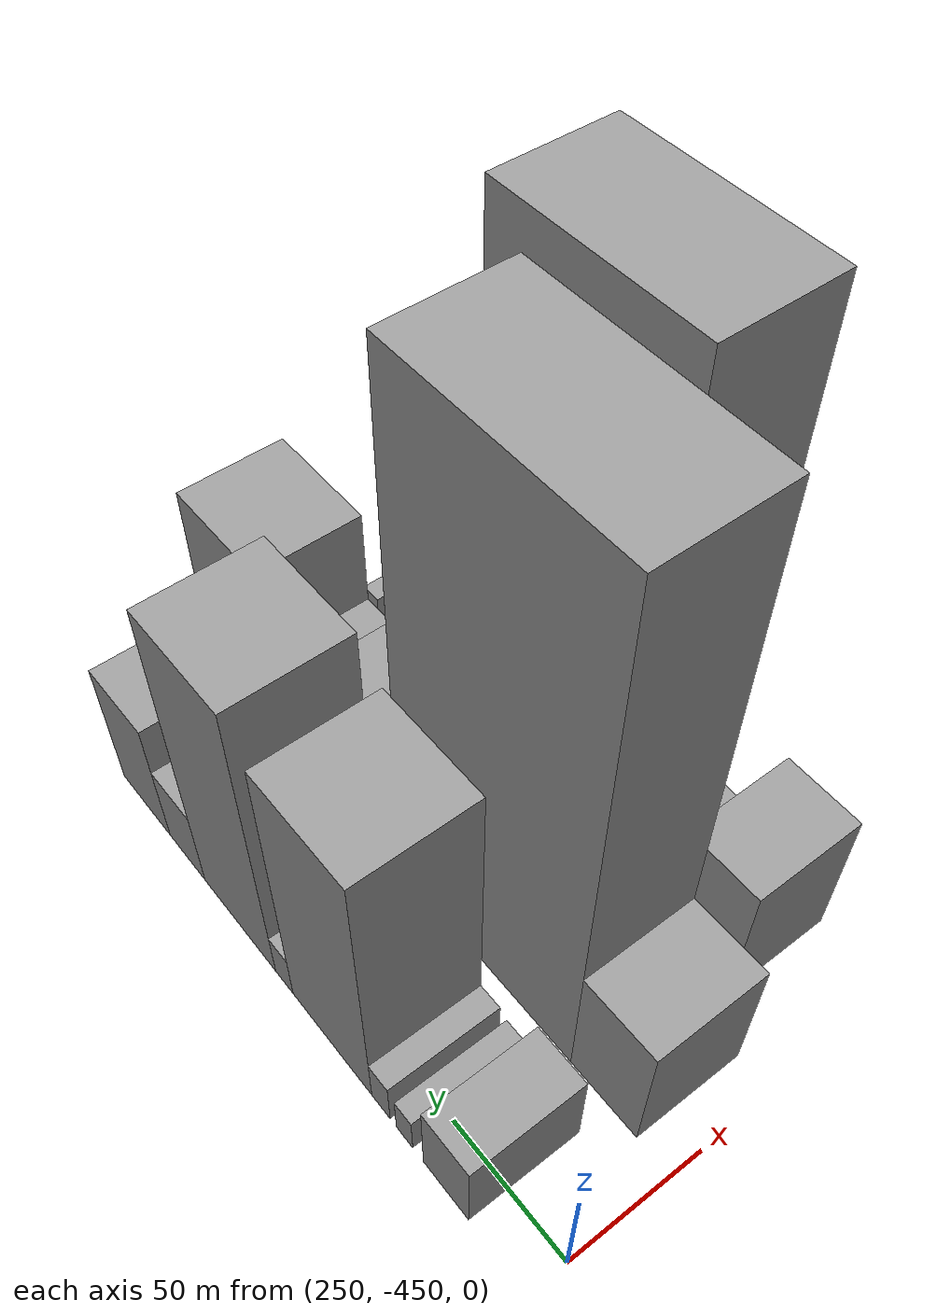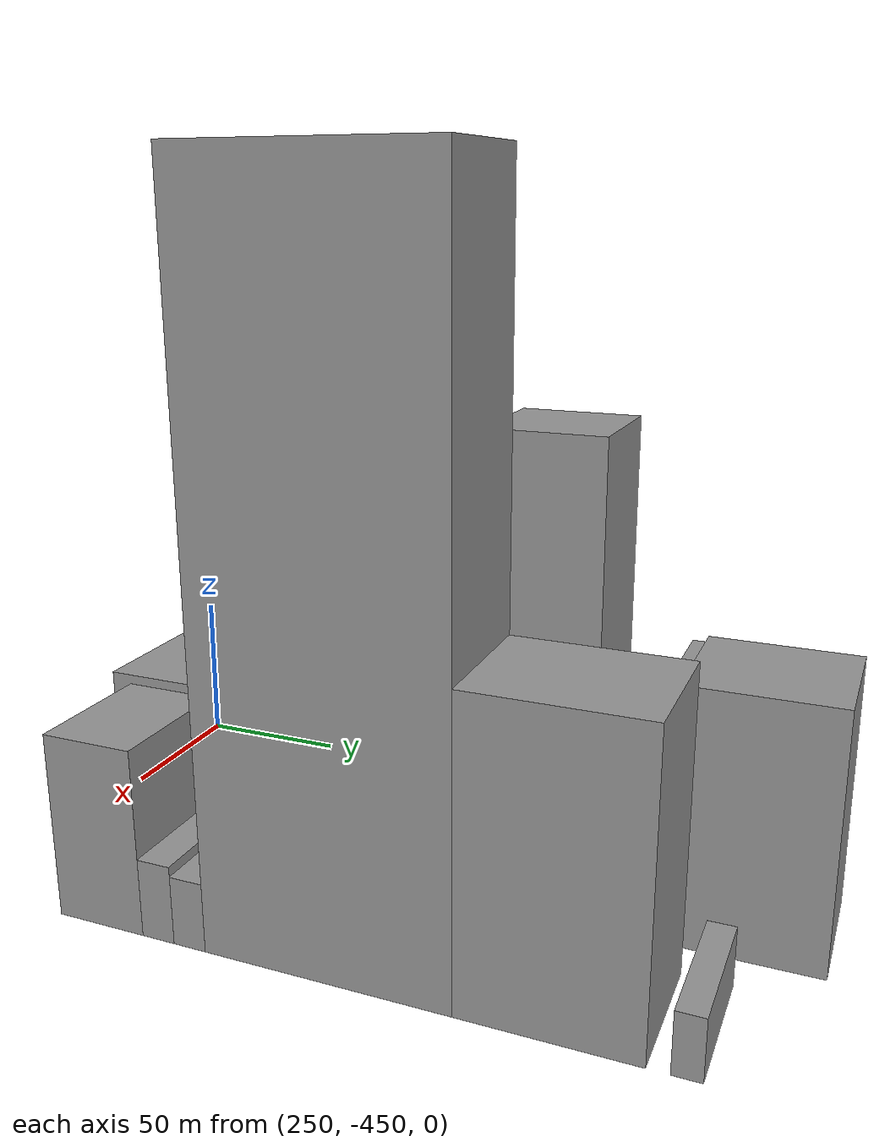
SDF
<sdf version="1.6">
 <world name="default">
  <model name="building_160">
   <static>1</static>
   <pose>256.0000 -414.4426 0 0.000000 0.000000 0.000000</pose>
   <link name="link">
    <pose>0 0 18.00 0 0 0</pose>
    <collision name="collision"><geometry><box><size>40.0000 20.6248 36.0000</size></box></geometry></collision>
    <visual name="visual">
     <cast_shadows>0</cast_shadows>
     <geometry><box><size>40.0000 20.6248 36.0000</size></box></geometry>
     <material>
      <script>
       <uri>model://grey_wall/materials/scripts</uri>
       <uri>model://grey_wall/materials/textures</uri>
       <name>vrc/grey_wall</name>
      </script>
     </material>
    </visual>
   </link>
  </model>
  <model name="building_161">
   <static>1</static>
   <pose>256.0000 -395.2397 0 0.000000 0.000000 0.000000</pose>
   <link name="link">
    <pose>0 0 9.00 0 0 0</pose>
    <collision name="collision"><geometry><box><size>40.0000 7.7809 18.0000</size></box></geometry></collision>
    <visual name="visual">
     <cast_shadows>0</cast_shadows>
     <geometry><box><size>40.0000 7.7809 18.0000</size></box></geometry>
     <material>
      <script>
       <uri>model://grey_wall/materials/scripts</uri>
       <uri>model://grey_wall/materials/textures</uri>
       <name>vrc/grey_wall</name>
      </script>
     </material>
    </visual>
   </link>
  </model>
  <model name="building_162">
   <static>1</static>
   <pose>256.0000 -383.8752 0 0.000000 0.000000 0.000000</pose>
   <link name="link">
    <pose>0 0 10.50 0 0 0</pose>
    <collision name="collision"><geometry><box><size>40.0000 8.9481 21.0000</size></box></geometry></collision>
    <visual name="visual">
     <cast_shadows>0</cast_shadows>
     <geometry><box><size>40.0000 8.9481 21.0000</size></box></geometry>
     <material>
      <script>
       <uri>model://grey_wall/materials/scripts</uri>
       <uri>model://grey_wall/materials/textures</uri>
       <name>vrc/grey_wall</name>
      </script>
     </material>
    </visual>
   </link>
  </model>
  <model name="building_163">
   <static>1</static>
   <pose>256.0000 -359.1177 0 0.000000 0.000000 0.000000</pose>
   <link name="link">
    <pose>0 0 60.00 0 0 0</pose>
    <collision name="collision"><geometry><box><size>40.0000 40.5668 120.0000</size></box></geometry></collision>
    <visual name="visual">
     <cast_shadows>0</cast_shadows>
     <geometry><box><size>40.0000 40.5668 120.0000</size></box></geometry>
     <material>
      <script>
       <uri>model://grey_wall/materials/scripts</uri>
       <uri>model://grey_wall/materials/textures</uri>
       <name>vrc/grey_wall</name>
      </script>
     </material>
    </visual>
   </link>
  </model>
  <model name="building_164">
   <static>1</static>
   <pose>256.0000 -334.0987 0 0.000000 0.000000 0.000000</pose>
   <link name="link">
    <pose>0 0 10.50 0 0 0</pose>
    <collision name="collision"><geometry><box><size>40.0000 9.4712 21.0000</size></box></geometry></collision>
    <visual name="visual">
     <cast_shadows>0</cast_shadows>
     <geometry><box><size>40.0000 9.4712 21.0000</size></box></geometry>
     <material>
      <script>
       <uri>model://grey_wall/materials/scripts</uri>
       <uri>model://grey_wall/materials/textures</uri>
       <name>vrc/grey_wall</name>
      </script>
     </material>
    </visual>
   </link>
  </model>
  <model name="building_165">
   <static>1</static>
   <pose>256.0000 -309.1031 0 0.000000 0.000000 0.000000</pose>
   <link name="link">
    <pose>0 0 66.00 0 0 0</pose>
    <collision name="collision"><geometry><box><size>40.0000 40.5200 132.0000</size></box></geometry></collision>
    <visual name="visual">
     <cast_shadows>0</cast_shadows>
     <geometry><box><size>40.0000 40.5200 132.0000</size></box></geometry>
     <material>
      <script>
       <uri>model://grey_wall/materials/scripts</uri>
       <uri>model://grey_wall/materials/textures</uri>
       <name>vrc/grey_wall</name>
      </script>
     </material>
    </visual>
   </link>
  </model>
  <model name="building_166">
   <static>1</static>
   <pose>256.0000 -278.2176 0 0.000000 0.000000 0.000000</pose>
   <link name="link">
    <pose>0 0 18.00 0 0 0</pose>
    <collision name="collision"><geometry><box><size>40.0000 21.2509 36.0000</size></box></geometry></collision>
    <visual name="visual">
     <cast_shadows>0</cast_shadows>
     <geometry><box><size>40.0000 21.2509 36.0000</size></box></geometry>
     <material>
      <script>
       <uri>model://grey_wall/materials/scripts</uri>
       <uri>model://grey_wall/materials/textures</uri>
       <name>vrc/grey_wall</name>
      </script>
     </material>
    </visual>
   </link>
  </model>
  <model name="building_167">
   <static>1</static>
   <pose>256.0000 -252.8612 0 0.000000 0.000000 0.000000</pose>
   <link name="link">
    <pose>0 0 28.50 0 0 0</pose>
    <collision name="collision"><geometry><box><size>40.0000 29.4620 57.0000</size></box></geometry></collision>
    <visual name="visual">
     <cast_shadows>0</cast_shadows>
     <geometry><box><size>40.0000 29.4620 57.0000</size></box></geometry>
     <material>
      <script>
       <uri>model://grey_wall/materials/scripts</uri>
       <uri>model://grey_wall/materials/textures</uri>
       <name>vrc/grey_wall</name>
      </script>
     </material>
    </visual>
   </link>
  </model>
  <model name="building_218">
   <static>1</static>
   <pose>308.0000 -421.5359 0 0.000000 0.000000 0.000000</pose>
   <link name="link">
    <pose>0 0 27.00 0 0 0</pose>
    <collision name="collision"><geometry><box><size>40.0000 28.8248 54.0000</size></box></geometry></collision>
    <visual name="visual">
     <cast_shadows>0</cast_shadows>
     <geometry><box><size>40.0000 28.8248 54.0000</size></box></geometry>
     <material>
      <script>
       <uri>model://grey_wall/materials/scripts</uri>
       <uri>model://grey_wall/materials/textures</uri>
       <name>vrc/grey_wall</name>
      </script>
     </material>
    </visual>
   </link>
  </model>
  <model name="building_219">
   <static>1</static>
   <pose>308.0000 -365.5465 0 0.000000 0.000000 0.000000</pose>
   <link name="link">
    <pose>0 0 106.50 0 0 0</pose>
    <collision name="collision"><geometry><box><size>40.0000 83.1540 213.0000</size></box></geometry></collision>
    <visual name="visual">
     <cast_shadows>0</cast_shadows>
     <geometry><box><size>40.0000 83.1540 213.0000</size></box></geometry>
     <material>
      <script>
       <uri>model://grey_wall/materials/scripts</uri>
       <uri>model://grey_wall/materials/textures</uri>
       <name>vrc/grey_wall</name>
      </script>
     </material>
    </visual>
   </link>
  </model>
  <model name="building_220">
   <static>1</static>
   <pose>308.0000 -299.4069 0 0.000000 0.000000 0.000000</pose>
   <link name="link">
    <pose>0 0 31.50 0 0 0</pose>
    <collision name="collision"><geometry><box><size>40.0000 33.1252 63.0000</size></box></geometry></collision>
    <visual name="visual">
     <cast_shadows>0</cast_shadows>
     <geometry><box><size>40.0000 33.1252 63.0000</size></box></geometry>
     <material>
      <script>
       <uri>model://grey_wall/materials/scripts</uri>
       <uri>model://grey_wall/materials/textures</uri>
       <name>vrc/grey_wall</name>
      </script>
     </material>
    </visual>
   </link>
  </model>
  <model name="building_221">
   <static>1</static>
   <pose>308.0000 -265.2248 0 0.000000 0.000000 0.000000</pose>
   <link name="link">
    <pose>0 0 19.50 0 0 0</pose>
    <collision name="collision"><geometry><box><size>40.0000 23.2389 39.0000</size></box></geometry></collision>
    <visual name="visual">
     <cast_shadows>0</cast_shadows>
     <geometry><box><size>40.0000 23.2389 39.0000</size></box></geometry>
     <material>
      <script>
       <uri>model://grey_wall/materials/scripts</uri>
       <uri>model://grey_wall/materials/textures</uri>
       <name>vrc/grey_wall</name>
      </script>
     </material>
    </visual>
   </link>
  </model>
  <model name="building_222">
   <static>1</static>
   <pose>308.0000 -231.7571 0 0.000000 0.000000 0.000000</pose>
   <link name="link">
    <pose>0 0 39.00 0 0 0</pose>
    <collision name="collision"><geometry><box><size>40.0000 43.6965 78.0000</size></box></geometry></collision>
    <visual name="visual">
     <cast_shadows>0</cast_shadows>
     <geometry><box><size>40.0000 43.6965 78.0000</size></box></geometry>
     <material>
      <script>
       <uri>model://grey_wall/materials/scripts</uri>
       <uri>model://grey_wall/materials/textures</uri>
       <name>vrc/grey_wall</name>
      </script>
     </material>
    </visual>
   </link>
  </model>
  <model name="building_265">
   <static>1</static>
   <pose>360.0000 -405.5391 0 0.000000 0.000000 0.000000</pose>
   <link name="link">
    <pose>0 0 28.50 0 0 0</pose>
    <collision name="collision"><geometry><box><size>40.0000 28.5827 57.0000</size></box></geometry></collision>
    <visual name="visual">
     <cast_shadows>0</cast_shadows>
     <geometry><box><size>40.0000 28.5827 57.0000</size></box></geometry>
     <material>
      <script>
       <uri>model://grey_wall/materials/scripts</uri>
       <uri>model://grey_wall/materials/textures</uri>
       <name>vrc/grey_wall</name>
      </script>
     </material>
    </visual>
   </link>
  </model>
  <model name="building_266">
   <static>1</static>
   <pose>360.0000 -386.0243 0 0.000000 0.000000 0.000000</pose>
   <link name="link">
    <pose>0 0 12.00 0 0 0</pose>
    <collision name="collision"><geometry><box><size>40.0000 10.4470 24.0000</size></box></geometry></collision>
    <visual name="visual">
     <cast_shadows>0</cast_shadows>
     <geometry><box><size>40.0000 10.4470 24.0000</size></box></geometry>
     <material>
      <script>
       <uri>model://grey_wall/materials/scripts</uri>
       <uri>model://grey_wall/materials/textures</uri>
       <name>vrc/grey_wall</name>
      </script>
     </material>
    </visual>
   </link>
  </model>
  <model name="building_267">
   <static>1</static>
   <pose>360.0000 -375.6883 0 0.000000 0.000000 0.000000</pose>
   <link name="link">
    <pose>0 0 10.50 0 0 0</pose>
    <collision name="collision"><geometry><box><size>40.0000 10.2249 21.0000</size></box></geometry></collision>
    <visual name="visual">
     <cast_shadows>0</cast_shadows>
     <geometry><box><size>40.0000 10.2249 21.0000</size></box></geometry>
     <material>
      <script>
       <uri>model://grey_wall/materials/scripts</uri>
       <uri>model://grey_wall/materials/textures</uri>
       <name>vrc/grey_wall</name>
      </script>
     </material>
    </visual>
   </link>
  </model>
  <model name="building_268">
   <static>1</static>
   <pose>360.0000 -333.6656 0 0.000000 0.000000 0.000000</pose>
   <link name="link">
    <pose>0 0 106.50 0 0 0</pose>
    <collision name="collision"><geometry><box><size>40.0000 73.8204 213.0000</size></box></geometry></collision>
    <visual name="visual">
     <cast_shadows>0</cast_shadows>
     <geometry><box><size>40.0000 73.8204 213.0000</size></box></geometry>
     <material>
      <script>
       <uri>model://grey_wall/materials/scripts</uri>
       <uri>model://grey_wall/materials/textures</uri>
       <name>vrc/grey_wall</name>
      </script>
     </material>
    </visual>
   </link>
  </model>
  <model name="building_269">
   <static>1</static>
   <pose>360.0000 -271.6630 0 0.000000 0.000000 0.000000</pose>
   <link name="link">
    <pose>0 0 45.00 0 0 0</pose>
    <collision name="collision"><geometry><box><size>40.0000 50.1848 90.0000</size></box></geometry></collision>
    <visual name="visual">
     <cast_shadows>0</cast_shadows>
     <geometry><box><size>40.0000 50.1848 90.0000</size></box></geometry>
     <material>
      <script>
       <uri>model://grey_wall/materials/scripts</uri>
       <uri>model://grey_wall/materials/textures</uri>
       <name>vrc/grey_wall</name>
      </script>
     </material>
    </visual>
   </link>
  </model>
  <model name="building_270">
   <static>1</static>
   <pose>360.0000 -236.6081 0 0.000000 0.000000 0.000000</pose>
   <link name="link">
    <pose>0 0 9.00 0 0 0</pose>
    <collision name="collision"><geometry><box><size>40.0000 7.9251 18.0000</size></box></geometry></collision>
    <visual name="visual">
     <cast_shadows>0</cast_shadows>
     <geometry><box><size>40.0000 7.9251 18.0000</size></box></geometry>
     <material>
      <script>
       <uri>model://grey_wall/materials/scripts</uri>
       <uri>model://grey_wall/materials/textures</uri>
       <name>vrc/grey_wall</name>
      </script>
     </material>
    </visual>
   </link>
  </model>
 </world>
</sdf>
